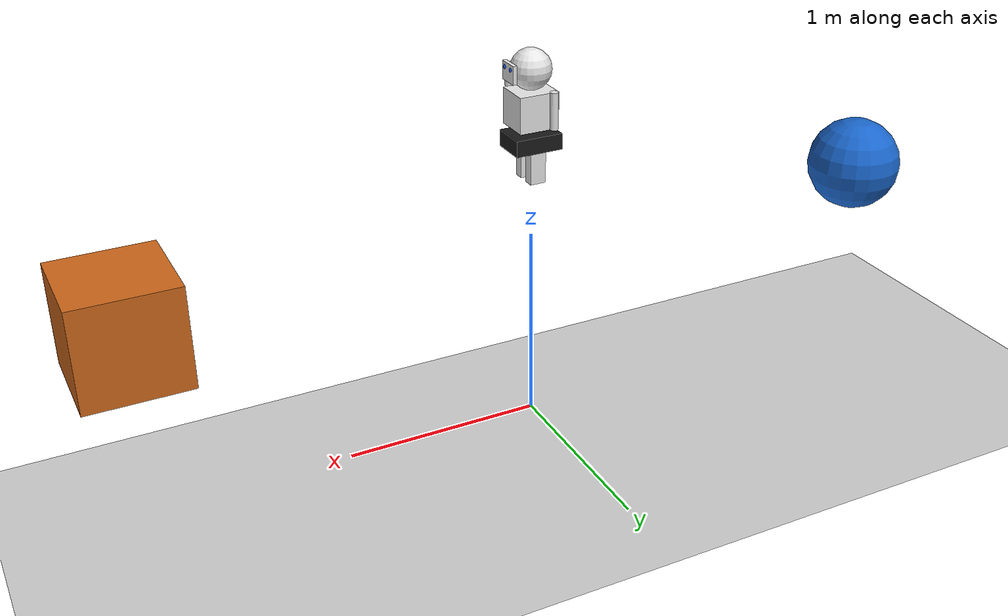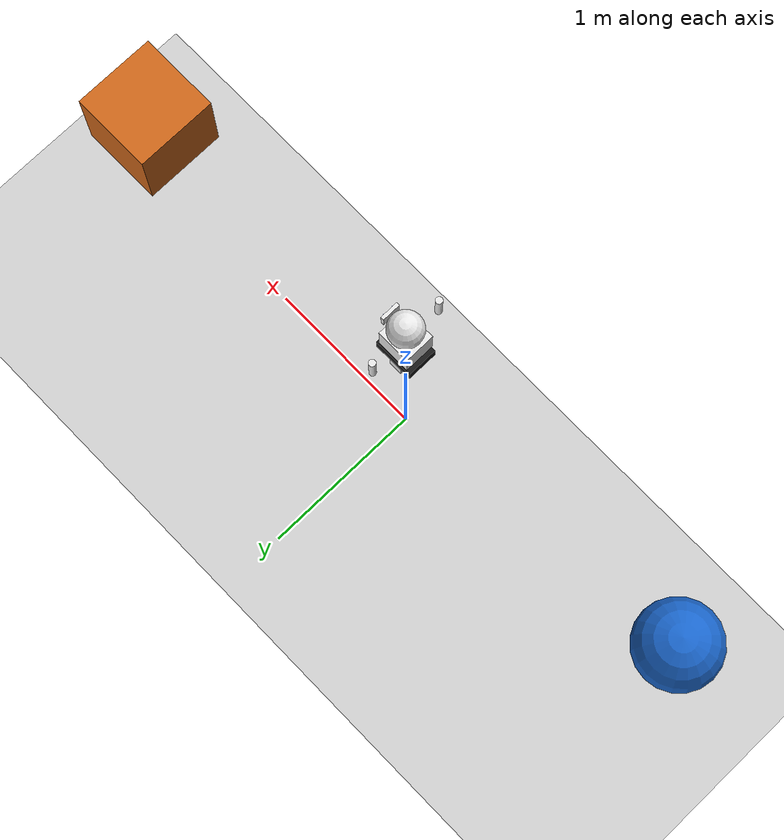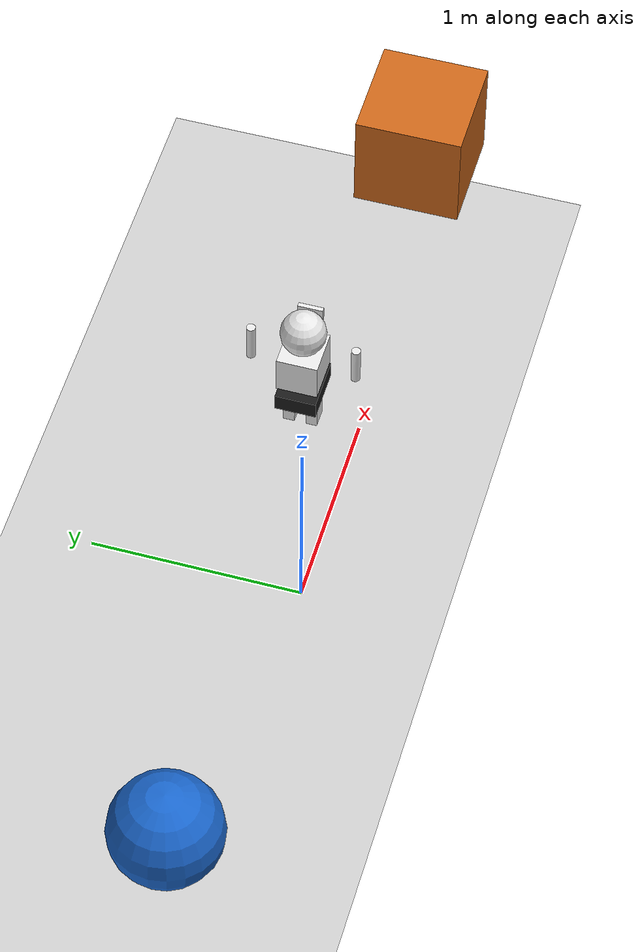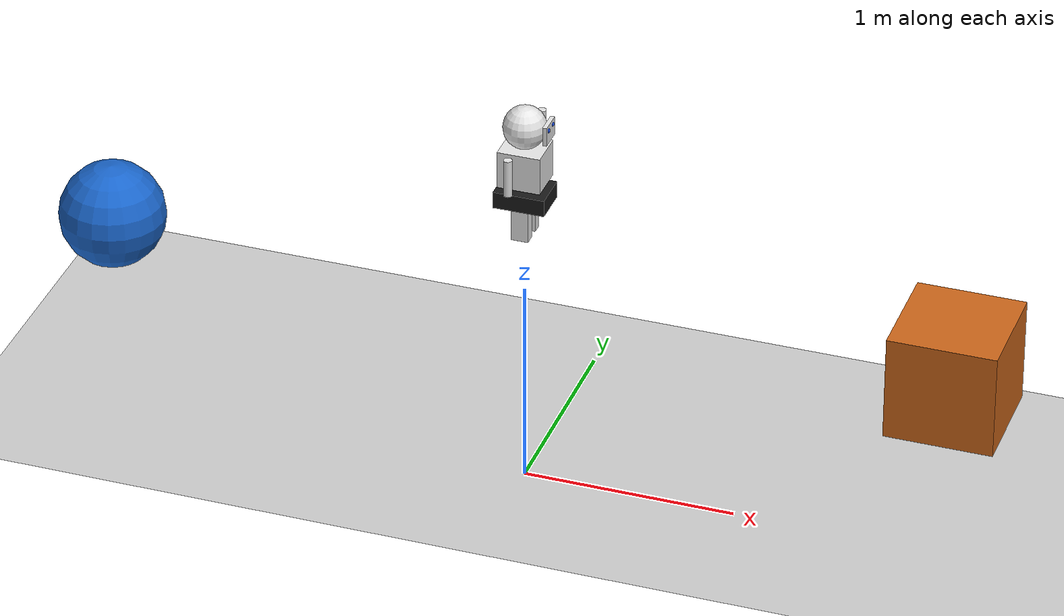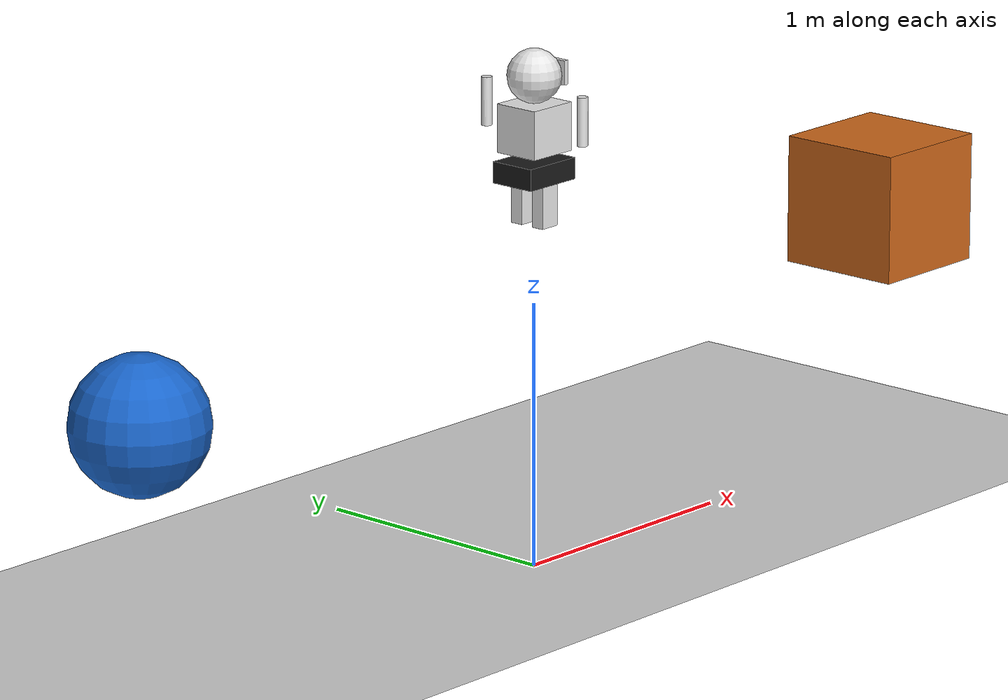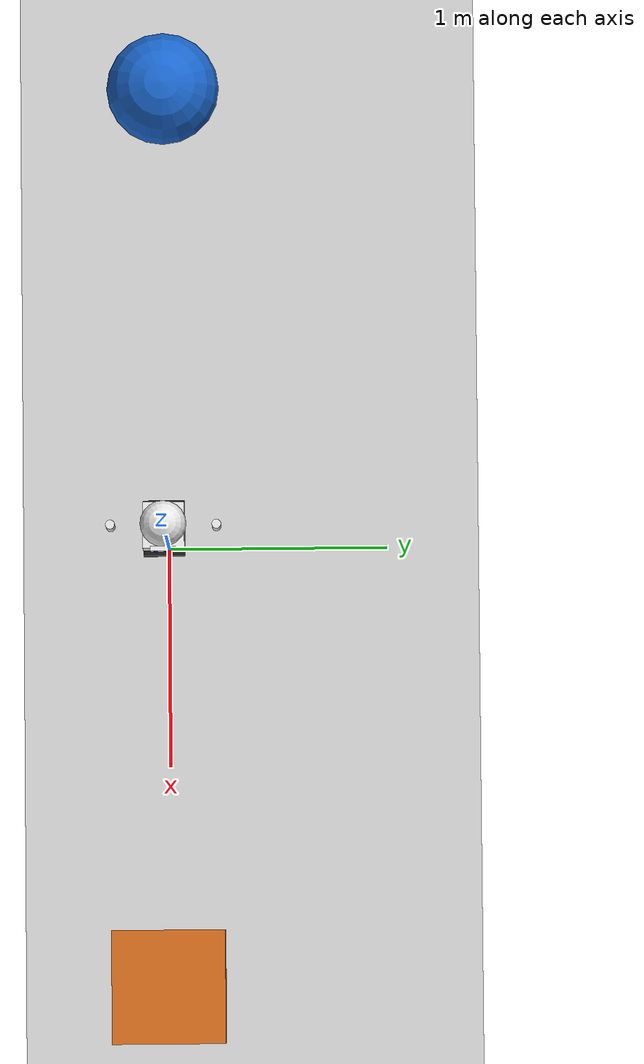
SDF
<?xml version="1.0" ?>
<sdf version="1.6">
  <world name="physics_tuning_example">
    <!-- Outdoor environment -->
    <include>
      <uri>model://ground_plane</uri>
    </include>

    <include>
      <uri>model://sun</uri>
    </include>

    <!-- Physics parameters -->
    <physics name="tuned_physics" type="ode">
      <!-- Smaller step size for more accurate simulation -->
      <max_step_size>0.0005</max_step_size>
      <!-- Target real-time performance -->
      <real_time_factor>1</real_time_factor>
      <real_time_update_rate>2000</real_time_update_rate>

      <!-- Earth gravity (can be modified for different environments) -->
      <gravity>0 0 -9.8</gravity>

      <!-- ODE-specific parameters -->
      <ode>
        <solver>
          <type>quick</type>
          <iters>10</iters>
          <sor>1.3</sor>
        </solver>
        <constraints>
          <cfm>0</cfm>
          <erp>0.2</erp>
          <contact_max_correcting_vel>100</contact_max_correcting_vel>
          <contact_surface_layer>0.001</contact_surface_layer>
        </constraints>
      </ode>
    </physics>

    <!-- Example: Different gravity (e.g., Moon gravity at 1.62 m/s²) -->

    <!-- Example: Objects with different collision properties -->
    <model name="high_friction_box">
      <pose>2 0 1 0 0 0</pose>
      <link name="link">
        <collision name="collision">
          <geometry>
            <box>
              <size>0.5 0.5 0.5</size>
            </box>
          </geometry>
          <surface>
            <friction>
              <ode>
                <mu>100.0</mu>
                <mu2>50.0</mu2>
              </ode>
            </friction>
          </surface>
        </collision>
        <visual name="visual">
          <geometry>
            <box>
              <size>0.5 0.5 0.5</size>
            </box>
          </geometry>
          <material>
            <ambient>0.8 0.4 0.1 1</ambient>
            <diffuse>0.8 0.4 0.1 1</diffuse>
          </material>
        </visual>
      </link>
    </model>

    <model name="low_friction_sphere">
      <pose>-2 0 1 0 0 0</pose>
      <link name="link">
        <collision name="collision">
          <geometry>
            <sphere>
              <radius>0.25</radius>
            </sphere>
          </geometry>
          <surface>
            <friction>
              <ode>
                <mu>0.01</mu>
                <mu2>0.01</mu2>
              </ode>
            </friction>
          </surface>
        </collision>
        <visual name="visual">
          <geometry>
            <sphere>
              <radius>0.25</radius>
            </sphere>
          </geometry>
          <material>
            <ambient>0.1 0.4 0.8 1</ambient>
            <diffuse>0.1 0.4 0.8 1</diffuse>
          </material>
        </visual>
      </link>
    </model>

    <!-- Test humanoid robot -->
    <include>
      <uri>model://simple_humanoid</uri>
      <pose>0 0 1.5 0 0 0</pose>
    </include>
  </world>
</sdf>

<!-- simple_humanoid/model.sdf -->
<sdf version="1.6">
  <model name="simple_humanoid">
    <static>false</static>

    <!-- base -->
    <link name="base">
      <pose>0 0 0 0 0 0</pose>
      <visual name="base_vis">
        <geometry>
          <box>
            <size>0.24 0.18 0.08</size>
          </box>
        </geometry>
        <material>
          <ambient>0.1 0.1 0.1 1</ambient>
          <diffuse>0.1 0.1 0.1 1</diffuse>
        </material>
      </visual>
      <collision name="base_col">
        <geometry>
          <box>
            <size>0.24 0.18 0.08</size>
          </box>
        </geometry>
      </collision>
    </link>

    <!-- torso -->
    <link name="torso">
      <pose>0 0 0.16 0 0 0</pose>
      <visual name="torso_vis">
        <geometry>
          <box>
            <size>0.20 0.18 0.18</size>
          </box>
        </geometry>
        <material>
          <ambient>0.9 0.9 0.9 1</ambient>
          <diffuse>0.9 0.9 0.9 1</diffuse>
        </material>
      </visual>
      <collision name="torso_col">
        <geometry>
          <box>
            <size>0.20 0.18 0.18</size>
          </box>
        </geometry>
      </collision>
    </link>

    <!-- head -->
    <link name="head">
      <pose>0 0 0.35 0 0 0</pose>
      <visual name="head_vis">
        <geometry>
          <sphere>
            <radius>0.10</radius>
          </sphere>
        </geometry>
        <material>
          <ambient>0.9 0.9 0.9 1</ambient>
          <diffuse>0.9 0.9 0.9 1</diffuse>
        </material>
      </visual>
      <collision name="head_col">
        <geometry>
          <sphere>
            <radius>0.10</radius>
          </sphere>
        </geometry>
      </collision>
    </link>

    <!-- face plate -->
    <link name="face">
      <pose>0.11 0 0.35 0 0 0</pose>
      <visual name="face_vis">
        <geometry>
          <box>
            <size>0.02 0.11 0.09</size>
          </box>
        </geometry>
        <material>
          <ambient>0.9 0.9 0.9 1</ambient>
          <diffuse>0.9 0.9 0.9 1</diffuse>
        </material>
      </visual>
    </link>

    <!-- eyes -->
    <link name="left_eye">
      <pose>0.115 0.03 0.37 0 0 0</pose>
      <visual name="left_eye_vis">
        <geometry>
          <sphere>
            <radius>0.012</radius>
          </sphere>
        </geometry>
        <material>
          <ambient>0.1 0.3 0.9 1</ambient>
          <diffuse>0.1 0.3 0.9 1</diffuse>
        </material>
      </visual>
    </link>

    <link name="right_eye">
      <pose>0.115 -0.03 0.37 0 0 0</pose>
      <visual name="right_eye_vis">
        <geometry>
          <sphere>
            <radius>0.012</radius>
          </sphere>
        </geometry>
        <material>
          <ambient>0.1 0.3 0.9 1</ambient>
          <diffuse>0.1 0.3 0.9 1</diffuse>
        </material>
      </visual>
    </link>

    <!-- mouth -->
    <link name="mouth">
      <pose>0.115 0 0.33 0 0 0</pose>
      <visual name="mouth_vis">
        <geometry>
          <box>
            <size>0.005 0.05 0.01</size>
          </box>
        </geometry>
        <material>
          <ambient>0.1 0.1 0.1 1</ambient>
          <diffuse>0.1 0.1 0.1 1</diffuse>
        </material>
      </visual>
    </link>

    <!-- arms -->
    <link name="left_arm">
      <pose>0 0.23 0.22 0 0 1.57</pose>
      <visual name="left_arm_vis">
        <geometry>
          <cylinder>
            <radius>0.02</radius>
            <length>0.18</length>
          </cylinder>
        </geometry>
        <material>
          <ambient>0.9 0.9 0.9 1</ambient>
          <diffuse>0.9 0.9 0.9 1</diffuse>
        </material>
      </visual>
    </link>

    <link name="right_arm">
      <pose>0 -0.23 0.22 0 0 1.57</pose>
      <visual name="right_arm_vis">
        <geometry>
          <cylinder>
            <radius>0.02</radius>
            <length>0.18</length>
          </cylinder>
        </geometry>
        <material>
          <ambient>0.9 0.9 0.9 1</ambient>
          <diffuse>0.9 0.9 0.9 1</diffuse>
        </material>
      </visual>
    </link>

    <!-- legs -->
    <link name="left_leg">
      <pose>0 0.05 -0.10 0 0 0</pose>
      <visual name="left_leg_vis">
        <geometry>
          <box>
            <size>0.08 0.05 0.20</size>
          </box>
        </geometry>
        <material>
          <ambient>0.9 0.9 0.9 1</ambient>
          <diffuse>0.9 0.9 0.9 1</diffuse>
        </material>
      </visual>
    </link>

    <link name="right_leg">
      <pose>0 -0.05 -0.10 0 0 0</pose>
      <visual name="right_leg_vis">
        <geometry>
          <box>
            <size>0.08 0.05 0.20</size>
          </box>
        </geometry>
        <material>
          <ambient>0.9 0.9 0.9 1</ambient>
          <diffuse>0.9 0.9 0.9 1</diffuse>
        </material>
      </visual>
    </link>

    <!-- simple joints (all fixed) -->
    <joint name="base_torso" type="fixed">
      <parent>base</parent>
      <child>torso</child>
    </joint>
    <joint name="torso_head" type="fixed">
      <parent>torso</parent>
      <child>head</child>
    </joint>
    <joint name="head_face" type="fixed">
      <parent>head</parent>
      <child>face</child>
    </joint>
    <joint name="head_left_eye" type="fixed">
      <parent>head</parent>
      <child>left_eye</child>
    </joint>
    <joint name="head_right_eye" type="fixed">
      <parent>head</parent>
      <child>right_eye</child>
    </joint>
    <joint name="head_mouth" type="fixed">
      <parent>head</parent>
      <child>mouth</child>
    </joint>
    <joint name="torso_left_arm" type="fixed">
      <parent>torso</parent>
      <child>left_arm</child>
    </joint>
    <joint name="torso_right_arm" type="fixed">
      <parent>torso</parent>
      <child>right_arm</child>
    </joint>
    <joint name="base_left_leg" type="fixed">
      <parent>base</parent>
      <child>left_leg</child>
    </joint>
    <joint name="base_right_leg" type="fixed">
      <parent>base</parent>
      <child>right_leg</child>
    </joint>

  </model>
</sdf>
